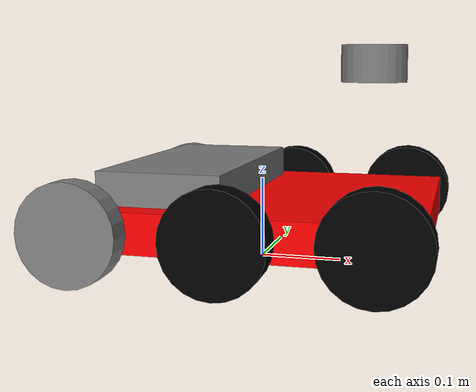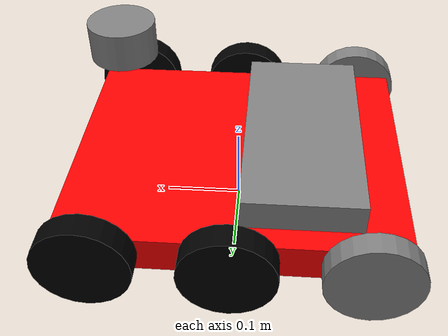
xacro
<?xml version="1.0"?>
<robot xmlns:xacro="http://ros.org/wiki/xacro" name="car">
  <xacro:arg name="wheel_diameter" default="0.120"/>

  <xacro:property name="update_rate" default="20"/>

  <xacro:property name="wheel_radius" value="${$(arg wheel_diameter)/2}"/>
  <xacro:property name="wheel_width" value="0.032"/>
  <xacro:property name="wheel_mass" value="0.1"/>

  <xacro:property name="omni_wheel_radius" value="${wheel_radius}"/>
  <xacro:property name="omni_wheel_width" value="0.029"/>
  <xacro:property name="omni_wheel_mass" value="${wheel_mass}"/>
  <xacro:property name="omni_vertical_offset" value="0.005"/>

  <xacro:property name="wheel_friction" value="0.8"/>
  <xacro:property name="wheelbase_length" value="0.3429"/>
  <xacro:property name="front_wheelbase_width" value="0.25"/>
  <xacro:property name="rear_wheelbase_width" value="0.25"/>

  <!-- all the batteries, pi, etc. are represented by one box -->>
  <xacro:property name="components_height" value = "0.04"/>
  <xacro:property name="components_width" value = "0.30"/>
  <xacro:property name="components_length" value = "0.15"/>
  <xacro:property name="components_mass" value = "2.0"/>

  <!-- see https://www.gobilda.com/beeline-chassis-kit/ -->
  <xacro:property name="chassis_height" value = "0.048"/>
  <xacro:property name="chassis_width" value = "0.360"/>
  <xacro:property name="chassis_length" value = "0.432"/>
  <xacro:property name="chassis_mass" value = "4.0"/>

  <!-- wheelbase is to wheel centers -->
  <xacro:property name="wheelbase_width" value = "${chassis_width+wheel_width}"/>
  <xacro:property name="wheelbase_length" value = "0.336"/>

  <xacro:macro name="cylinder_inertia" params="m r h">
        <inertia  ixx="${m*(3*r*r+h*h)/12}" ixy = "0" ixz = "0"
                    iyy="${m*(3*r*r+h*h)/12}" iyz = "0"
                    izz="${m*r*r/2}" />
  </xacro:macro>

  <xacro:macro name="box_inertia" params="m x y z">
          <inertia  ixx="${m*(y*y+z*z)/12}" ixy = "0" ixz = "0"
                    iyy="${m*(x*x+z*z)/12}" iyz = "0"
                    izz="${m*(x*x+z*z)/12}" />
  </xacro:macro>

  <xacro:macro name="sphere_inertia" params="m r">
          <inertia  ixx="${2*m*r*r/5}" ixy = "0" ixz = "0"
                    iyy="${2*m*r*r/5}" iyz = "0"
                    izz="${2*m*r*r/5}" />
  </xacro:macro>

  <xacro:macro name="cylinder_inertial" params="m r h">
    <inertial>
      <mass value="${m}"/>
      <cylinder_inertia m="${m}" r="${r}" h="${h}"/>
    </inertial>
  </xacro:macro>

  <xacro:macro name="wheel" params="name" >
    <link name="${name}">
        <visual>
        <geometry>
            <cylinder length="${wheel_width}" radius="${wheel_radius}"/>
        </geometry>
        <material name="black">
            <color rgba="0 0 0 1"/>
        </material>
        </visual>
        <collision>
        <geometry>
            <cylinder length="${wheel_width}" radius="${wheel_radius}"/>
        </geometry>
        </collision>

        <cylinder_inertial m="${wheel_mass}" r="${wheel_radius}" h="${wheel_width}"/>
    </link>

    <gazebo reference="${name}">
        <mu1>${wheel_friction}</mu1>
        <material>Gazebo/DarkGrey</material>
    </gazebo>

  </xacro:macro>

  <xacro:macro name="xcylinder" params="name radius length color:='Gazebo/DarkGrey' rgba:='0.5 0.5 0.5 1.0' mass:=0.1" >
    <link name="${name}">
        <visual>
        <geometry>
            <cylinder length="${length}" radius="${radius}"/>
        </geometry>
        <material name="${name}_material">
            <color rgba="${rgba}"/>
        </material>
        </visual>
        <collision>
        <geometry>
            <cylinder length="${length}" radius="${radius}"/>
        </geometry>
        </collision>

        <cylinder_inertial m="${mass}" r="${radius}" h="${length}"/>
    </link>

    <gazebo reference="${name}">
        <material>${color}</material>
    </gazebo>

  </xacro:macro>

  <xacro:macro name="xbox" params="name length width height mass color:='Gazebo/Gray' rgba:='0.5 0.5 0.5 1.0'">
    <link name="${name}">
        <visual>
        <geometry>
            <box size="${length} ${width} ${height}"/>
        </geometry>
        <material name="${name}_material">
            <color rgba="${rgba}"/>
        </material>
        </visual>
        <collision>
        <geometry>
            <box size="${length} ${width} ${height}"/>
        </geometry>
        </collision>
        <inertial>
        <mass value="${mass}"/>
        <box_inertia m="${mass}" x="${length}" y="${width}" z="${height}"/>
        </inertial>
    </link>
    <gazebo reference="${name}">
      <material>${color}</material>
    </gazebo>

  </xacro:macro>

  <xacro:macro name="omni_wheel" params="name" >
    <link name="${name}">
        <visual>
        <geometry>
            <cylinder length="${omni_wheel_width}" radius="${omni_wheel_radius}"/>
        </geometry>
        <material name="gray">
            <color rgba="0.5 0.5 0.5 1"/>
        </material>
        </visual>
        <collision>
        <geometry>
            <cylinder length="${omni_wheel_width}" radius="${omni_wheel_radius}"/>
        </geometry>
        </collision>

        <cylinder_inertial m="${wheel_mass}" r="${omni_wheel_radius}" h="${omni_wheel_width}"/>
    </link>

    <gazebo reference="${name}">
        <mu1>${wheel_friction}</mu1>
        <mu2>0.0}</mu2>
        <material>Gazebo/Grey</material>
    </gazebo>

  </xacro:macro>

  <link name="base_footprint"/>
  <link name="base_link"/>

  <xbox name="chassis" length="${chassis_length}" width="${chassis_width}" height="${chassis_height}" mass="${chassis_mass}" color="Gazebo/Red" rgba="1 0 0 1" />
  <xbox name="components" length="${components_length}" width="${components_width}" height="${components_height}" mass="${components_mass}" color="Gazebo/Gray"  rgba="0.5 0.5 0.5 1" />

  <omni_wheel name="back_left_wheel"></omni_wheel>
  <omni_wheel name="back_right_wheel"></omni_wheel>
  <wheel name="mid_left_wheel"></wheel>
  <wheel name="mid_right_wheel"></wheel>
  <wheel name="front_left_wheel"></wheel>
  <wheel name="front_right_wheel"></wheel>

  <xcylinder name="lidar" length="0.045" radius="0.040"/>

  <joint name="laser_scanner_joint" type="fixed">
    <origin rpy="0 0 0" xyz="0.1397 0 0.2159"/>
    <parent link="base_link"/>
    <child link="lidar"/>
  </joint>

  <gazebo reference="lidar">
    <sensor type="ray" name="laser_scanner">
    <always_on>true</always_on>
    <update_rate>20</update_rate>
    <ray>
      <scan>
        <horizontal>
          <samples>360</samples>
          <resolution>1</resolution>
          <min_angle>${-pi}</min_angle>
          <max_angle>${pi}</max_angle>
        </horizontal>
      </scan>
      <range>
        <min>0.20</min>
        <max>15.0</max>
        <resolution>0.01</resolution>
      </range>
    </ray>
      <plugin name="scan" filename="libgazebo_ros_ray_sensor.so">
        <ros>
          <remapping>~/out:=scan</remapping>
        </ros>
        <output_type>sensor_msgs/LaserScan</output_type>
        <frame_name>lidar</frame_name>
      </plugin>
    </sensor>
  </gazebo>

  <joint name="base_link_joint" type="fixed">
     <parent link="base_footprint"/>
     <child link="base_link"/>
    <origin rpy="0 0 0" xyz="0 0 ${wheel_radius/2}"/>
   </joint>

  <joint name="back_left_wheel_joint" type="continuous">
    <axis xyz="0 0 1"/>
    <parent link="chassis"/>
    <child link="back_left_wheel"/>
    <origin rpy="${-pi/2} 0 0" xyz="${-wheelbase_length/2} ${wheelbase_width/2} 0.0"/>
    <limit effort="10000" velocity="500" />
  </joint>
  <joint name="back_right_wheel_joint" type="continuous">
    <axis xyz="0 0 1"/>
    <parent link="chassis"/>
    <child link="back_right_wheel"/>
    <origin rpy="${-pi/2} 0 0" xyz="${-wheelbase_length/2} -${wheelbase_width/2} 0.0"/>
    <limit effort="10000" velocity="500" />
  </joint>
  <joint name="mid_left_wheel_joint" type="continuous">
    <axis xyz="0 0 1"/>
    <parent link="chassis"/>
    <child link="mid_left_wheel"/>
    <origin rpy="${-pi/2} 0 0" xyz="0 ${wheelbase_width/2} 0"/>
    <limit effort="10000" velocity="500" />
  </joint>
  <joint name="mid_right_wheel_joint" type="continuous">
    <axis xyz="0 0 1"/>
    <parent link="chassis"/>
    <child link="mid_right_wheel"/>
    <origin rpy="${-pi/2} 0 0" xyz="0 ${-wheelbase_width/2} 0"/>
    <limit effort="10000" velocity="500" />
  </joint>
  <joint name="front_left_wheel_joint" type="continuous">
    <axis xyz="0 0 1"/>
    <parent link="chassis"/>
    <child link="front_left_wheel"/>
    <origin rpy="${-pi/2} 0 0" xyz="${wheelbase_length/2} ${wheelbase_width/2} ${omni_vertical_offset}"/>
    <limit effort="10000" velocity="500" />
  </joint>
  <joint name="front_right_wheel_joint" type="continuous">
    <axis xyz="0 0 1"/>
    <parent link="chassis"/>
    <child link="front_right_wheel"/>
    <origin rpy="${-pi/2} 0 0" xyz="${wheelbase_length/2} ${-wheelbase_width/2} ${omni_vertical_offset}"/>
    <limit effort="10000" velocity="500" />
  </joint>

  <joint name="chassis_joint" type="fixed">
    <parent link="base_link"/>
    <child link="chassis"/>
    <origin rpy="0 0 0" xyz="0 0 ${wheel_radius/2}"/>
  </joint>

  <joint name="components_joint" type="fixed">
    <parent link="base_link"/>
    <child link="components"/>
    <origin rpy="0 0 0" xyz="${-wheelbase_length/4} 0 ${(components_height+chassis_height+wheel_radius)/2}"/>
  </joint>

  <gazebo>

    <plugin name="differential_drive_controller" filename="libgazebo_ros_diff_drive.so">

        <ros>
          <remapping>cmd_vel:=cmd_vel</remapping>
          <remapping>odom:=ground_truth/odom</remapping>
        </ros>

      <!-- Plugin update rate in Hz -->
      <update_rate>${update_rate}</update_rate>
      <num_wheel_pairs>3</num_wheel_pairs>

      <!-- Name of left joint, defaults to `left_joint` -->
      <left_joint>mid_left_wheel_joint</left_joint>
      <left_joint>back_left_wheel_joint</left_joint>
      <left_joint>front_left_wheel_joint</left_joint>

      <!-- Name of right joint, defaults to `right_joint` -->
      <right_joint>mid_right_wheel_joint</right_joint>
      <right_joint>back_right_wheel_joint</right_joint>
      <right_joint>front_right_wheel_joint</right_joint>

      <!-- The distance from the center of one wheel to the other, in meters, defaults to 0.34 m -->
      <wheel_separation>${wheelbase_width}</wheel_separation>

      <!-- Diameter of the wheels, in meters, defaults to 0.15 m -->
      <wheel_diameter>${wheel_radius * 2.0}</wheel_diameter>

      <!-- Wheel acceleration, in rad/s^2, defaults to 0.0 rad/s^2 -->
      <max_wheel_acceleration>5.0</max_wheel_acceleration>

      <!-- Maximum torque which the wheels can produce, in Nm, defaults to 5 Nm -->
      <max_wheel_torque>2.4</max_wheel_torque>

      <!-- Topic to receive geometry_msgs/Twist message commands, defaults to `cmd_vel` -->
      <commandTopic>cmd_vel</commandTopic>

      <!-- Topic to publish nav_msgs/Odometry messages, defaults to `odom` -->
      <odometryTopic>odom</odometryTopic>

      <!-- Odometry frame, defaults to `odom` -->
      <odometry_frame>odom</odometry_frame>

      <!-- Robot frame to calculate odometry from, defaults to `base_footprint` -->
      <robot_base_frame>base_footprint</robot_base_frame>

      <!-- Odometry source, 0 for ENCODER, 1 for WORLD, defaults to WORLD -->
      <odometry_source>1</odometry_source>

      <!-- Set to true to publish transforms for the wheel links, defaults to false -->
      <publish_wheel_tf>true</publish_wheel_tf>

      <publish_odom>true</publish_odom>

      <!-- Set to true to publish transforms for the odometry, defaults to true -->
      <publish_odom_tf>true</publish_odom_tf>

      <!-- Set to true to publish sensor_msgs/JointState on /joint_states for the wheel joints, defaults to false -->
      <publishWheelJointState>true</publishWheelJointState>

      <!-- Set to true to swap right and left wheels, defaults to true -->
      <legacyMode>false</legacyMode>
    </plugin>
  </gazebo>

  <gazebo reference="base_link">
    <dampingFactor>0.00007</dampingFactor>
  </gazebo>
</robot>
